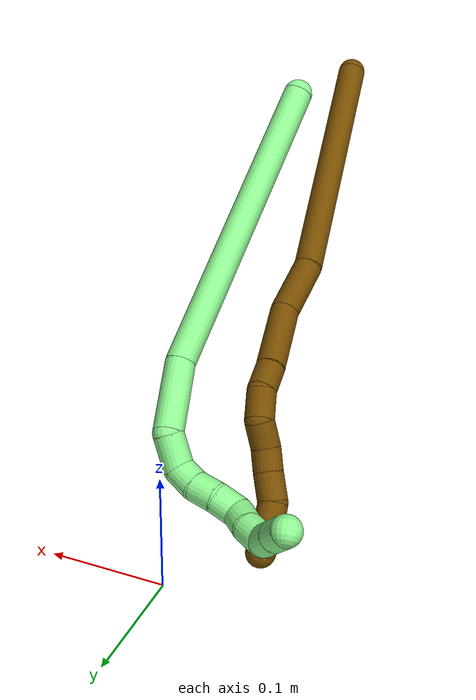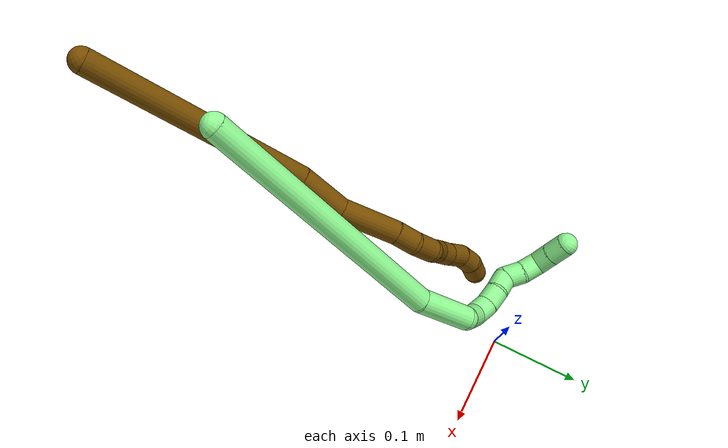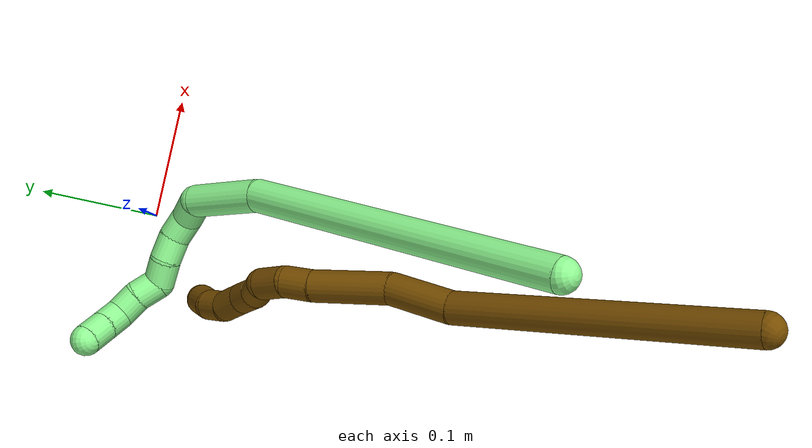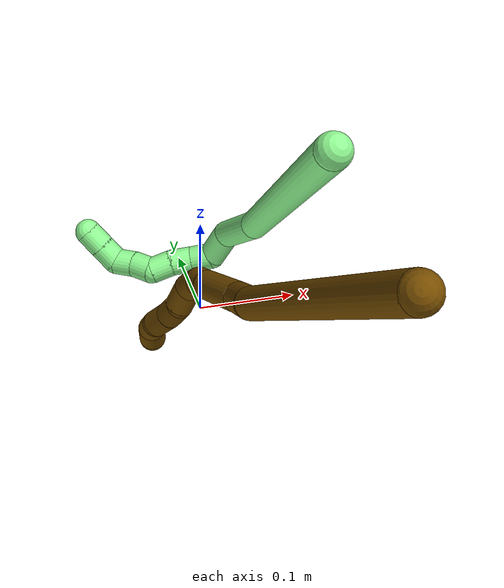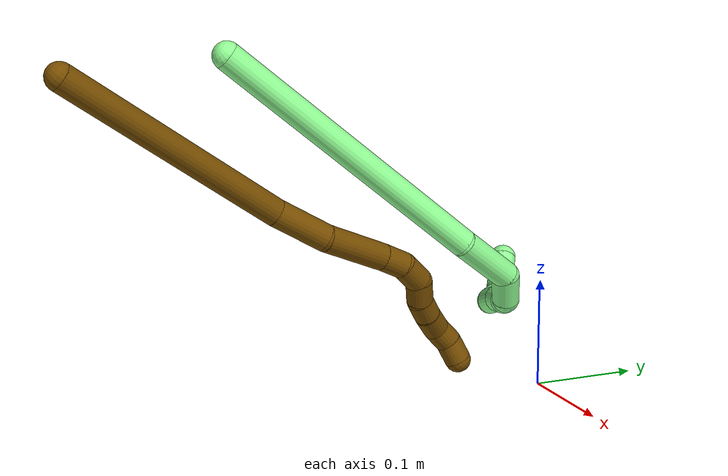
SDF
<sdf version="1.7">
 <world name="default">
  <model name="12">
   <static>0</static>
   <link name="12">
    <collision name="collision-cylinder-e_1_1_4">
     <pose>0.000473 0.048019 -0.101999 -2.70159 0.004196 -0.018764</pose>
     <geometry><cylinder><radius>0.0125</radius><length>0.225475</length></cylinder></geometry>
     <surface>
      <friction><ode><mu>1.16</mu><mu2>1.16</mu2><slip1>0</slip1><slip2>0</slip2></ode></friction>
      <contact><ode><kp>1e+06</kp><kd>1</kd><max_vel>0</max_vel><min_depth>0.001</min_depth></ode></contact>
     </surface>
    </collision>
    <visual name="visual-cylinder-e_1_1_4">
     <pose>0.000473 0.048019 -0.101999 -2.70159 0.004196 -0.018764</pose>
     <geometry><cylinder><radius>0.0125</radius><length>0.225475</length></cylinder></geometry>
     <material><ambient>0.466667 0.301961 0 1</ambient></material>
    </visual>
    <collision name="collision-cylinder-e_2_4_5">
     <pose>0.004848 0.10285 -0.228558 -2.87105 0.151893 -1.01958</pose>
     <geometry><cylinder><radius>0.0125</radius><length>0.05157</length></cylinder></geometry>
     <surface>
      <friction><ode><mu>1.16</mu><mu2>1.16</mu2><slip1>0</slip1><slip2>0</slip2></ode></friction>
      <contact><ode><kp>1e+06</kp><kd>1</kd><max_vel>0</max_vel><min_depth>0.001</min_depth></ode></contact>
     </surface>
    </collision>
    <visual name="visual-cylinder-e_2_4_5">
     <pose>0.004848 0.10285 -0.228558 -2.87105 0.151893 -1.01958</pose>
     <geometry><cylinder><radius>0.0125</radius><length>0.05157</length></cylinder></geometry>
     <material><ambient>0.466667 0.301961 0 1</ambient></material>
    </visual>
    <collision name="collision-cylinder-e_3_5_6">
     <pose>0.014424 0.126084 -0.279702 -2.5882 0.179658 -0.614279</pose>
     <geometry><cylinder><radius>0.0125</radius><length>0.063514</length></cylinder></geometry>
     <surface>
      <friction><ode><mu>1.16</mu><mu2>1.16</mu2><slip1>0</slip1><slip2>0</slip2></ode></friction>
      <contact><ode><kp>1e+06</kp><kd>1</kd><max_vel>0</max_vel><min_depth>0.001</min_depth></ode></contact>
     </surface>
    </collision>
    <visual name="visual-cylinder-e_3_5_6">
     <pose>0.014424 0.126084 -0.279702 -2.5882 0.179658 -0.614279</pose>
     <geometry><cylinder><radius>0.0125</radius><length>0.063514</length></cylinder></geometry>
     <material><ambient>0.466667 0.301961 0 1</ambient></material>
    </visual>
    <collision name="collision-cylinder-e_4_6_7">
     <pose>0.022184 0.147388 -0.31687 -2.70947 0.176977 -0.768267</pose>
     <geometry><cylinder><radius>0.0125</radius><length>0.023684</length></cylinder></geometry>
     <surface>
      <friction><ode><mu>1.16</mu><mu2>1.16</mu2><slip1>0</slip1><slip2>0</slip2></ode></friction>
      <contact><ode><kp>1e+06</kp><kd>1</kd><max_vel>0</max_vel><min_depth>0.001</min_depth></ode></contact>
     </surface>
    </collision>
    <visual name="visual-cylinder-e_4_6_7">
     <pose>0.022184 0.147388 -0.31687 -2.70947 0.176977 -0.768267</pose>
     <geometry><cylinder><radius>0.0125</radius><length>0.023684</length></cylinder></geometry>
     <material><ambient>0.466667 0.301961 0 1</ambient></material>
    </visual>
    <collision name="collision-cylinder-e_5_7_8">
     <pose>0.021974 0.158185 -0.338721 -2.65815 -0.178375 0.69592</pose>
     <geometry><cylinder><radius>0.0125</radius><length>0.025859</length></cylinder></geometry>
     <surface>
      <friction><ode><mu>1.16</mu><mu2>1.16</mu2><slip1>0</slip1><slip2>0</slip2></ode></friction>
      <contact><ode><kp>1e+06</kp><kd>1</kd><max_vel>0</max_vel><min_depth>0.001</min_depth></ode></contact>
     </surface>
    </collision>
    <visual name="visual-cylinder-e_5_7_8">
     <pose>0.021974 0.158185 -0.338721 -2.65815 -0.178375 0.69592</pose>
     <geometry><cylinder><radius>0.0125</radius><length>0.025859</length></cylinder></geometry>
     <material><ambient>0.466667 0.301961 0 1</ambient></material>
    </visual>
    <collision name="collision-cylinder-e_6_8_9">
     <pose>0.011686 0.167986 -0.357514 -2.66501 -0.756465 2.04423</pose>
     <geometry><cylinder><radius>0.0125</radius><length>0.023296</length></cylinder></geometry>
     <surface>
      <friction><ode><mu>1.16</mu><mu2>1.16</mu2><slip1>0</slip1><slip2>0</slip2></ode></friction>
      <contact><ode><kp>1e+06</kp><kd>1</kd><max_vel>0</max_vel><min_depth>0.001</min_depth></ode></contact>
     </surface>
    </collision>
    <visual name="visual-cylinder-e_6_8_9">
     <pose>0.011686 0.167986 -0.357514 -2.66501 -0.756465 2.04423</pose>
     <geometry><cylinder><radius>0.0125</radius><length>0.023296</length></cylinder></geometry>
     <material><ambient>0.466667 0.301961 0 1</ambient></material>
    </visual>
    <collision name="collision-cylinder-e_7_9_10">
     <pose>-0.000582 0.176632 -0.373126 -2.60942 -0.427397 1.34488</pose>
     <geometry><cylinder><radius>0.0125</radius><length>0.020618</length></cylinder></geometry>
     <surface>
      <friction><ode><mu>1.16</mu><mu2>1.16</mu2><slip1>0</slip1><slip2>0</slip2></ode></friction>
      <contact><ode><kp>1e+06</kp><kd>1</kd><max_vel>0</max_vel><min_depth>0.001</min_depth></ode></contact>
     </surface>
    </collision>
    <visual name="visual-cylinder-e_7_9_10">
     <pose>-0.000582 0.176632 -0.373126 -2.60942 -0.427397 1.34488</pose>
     <geometry><cylinder><radius>0.0125</radius><length>0.020618</length></cylinder></geometry>
     <material><ambient>0.466667 0.301961 0 1</ambient></material>
    </visual>
    <collision name="collision-cylinder-e_8_10_11">
     <pose>-0.009142 0.188283 -0.390442 -2.50039 -0.356227 0.993575</pose>
     <geometry><cylinder><radius>0.0125</radius><length>0.024582</length></cylinder></geometry>
     <surface>
      <friction><ode><mu>1.16</mu><mu2>1.16</mu2><slip1>0</slip1><slip2>0</slip2></ode></friction>
      <contact><ode><kp>1e+06</kp><kd>1</kd><max_vel>0</max_vel><min_depth>0.001</min_depth></ode></contact>
     </surface>
    </collision>
    <visual name="visual-cylinder-e_8_10_11">
     <pose>-0.009142 0.188283 -0.390442 -2.50039 -0.356227 0.993575</pose>
     <geometry><cylinder><radius>0.0125</radius><length>0.024582</length></cylinder></geometry>
     <material><ambient>0.466667 0.301961 0 1</ambient></material>
    </visual>
    <collision name="collision-cylinder-e_9_11_12">
     <pose>-0.015249 0.198446 -0.409076 -2.80669 -0.18094 0.985134</pose>
     <geometry><cylinder><radius>0.0125</radius><length>0.020242</length></cylinder></geometry>
     <surface>
      <friction><ode><mu>1.16</mu><mu2>1.16</mu2><slip1>0</slip1><slip2>0</slip2></ode></friction>
      <contact><ode><kp>1e+06</kp><kd>1</kd><max_vel>0</max_vel><min_depth>0.001</min_depth></ode></contact>
     </surface>
    </collision>
    <visual name="visual-cylinder-e_9_11_12">
     <pose>-0.015249 0.198446 -0.409076 -2.80669 -0.18094 0.985134</pose>
     <geometry><cylinder><radius>0.0125</radius><length>0.020242</length></cylinder></geometry>
     <material><ambient>0.466667 0.301961 0 1</ambient></material>
    </visual>
    <collision name="collision-cylinder-e_10_12_2">
     <pose>-0.021028 0.202008 -0.428286 -3.11198 -0.383406 2.98932</pose>
     <geometry><cylinder><radius>0.0125</radius><length>0.021159</length></cylinder></geometry>
     <surface>
      <friction><ode><mu>1.16</mu><mu2>1.16</mu2><slip1>0</slip1><slip2>0</slip2></ode></friction>
      <contact><ode><kp>1e+06</kp><kd>1</kd><max_vel>0</max_vel><min_depth>0.001</min_depth></ode></contact>
     </surface>
    </collision>
    <visual name="visual-cylinder-e_10_12_2">
     <pose>-0.021028 0.202008 -0.428286 -3.11198 -0.383406 2.98932</pose>
     <geometry><cylinder><radius>0.0125</radius><length>0.021159</length></cylinder></geometry>
     <material><ambient>0.466667 0.301961 0 1</ambient></material>
    </visual>
    <collision name="collision-sphere-2">
     <pose>-0.024986 0.202299 -0.438093 0 -0 0</pose>
     <geometry><sphere><radius>0.0125</radius></sphere></geometry>
     <surface>
      <friction><ode><mu>1.16</mu><mu2>1.16</mu2><slip1>0</slip1><slip2>0</slip2></ode></friction>
      <contact><ode><kp>1e+06</kp><kd>1</kd><max_vel>0</max_vel><min_depth>0.001</min_depth></ode></contact>
     </surface>
    </collision>
    <visual name="visual-sphere-2">
     <pose>-0.024986 0.202299 -0.438093 0 -0 0</pose>
     <geometry><sphere><radius>0.0125</radius></sphere></geometry>
     <material><ambient>0.466667 0.301961 0 1</ambient></material>
    </visual>
    <collision name="collision-sphere-12">
     <pose>-0.017071 0.201718 -0.418479 0 -0 0</pose>
     <geometry><sphere><radius>0.0125</radius></sphere></geometry>
     <surface>
      <friction><ode><mu>1.16</mu><mu2>1.16</mu2><slip1>0</slip1><slip2>0</slip2></ode></friction>
      <contact><ode><kp>1e+06</kp><kd>1</kd><max_vel>0</max_vel><min_depth>0.001</min_depth></ode></contact>
     </surface>
    </collision>
    <visual name="visual-sphere-12">
     <pose>-0.017071 0.201718 -0.418479 0 -0 0</pose>
     <geometry><sphere><radius>0.0125</radius></sphere></geometry>
     <material><ambient>0.466667 0.301961 0 1</ambient></material>
    </visual>
    <collision name="collision-sphere-11">
     <pose>-0.013428 0.195173 -0.399673 0 -0 0</pose>
     <geometry><sphere><radius>0.0125</radius></sphere></geometry>
     <surface>
      <friction><ode><mu>1.16</mu><mu2>1.16</mu2><slip1>0</slip1><slip2>0</slip2></ode></friction>
      <contact><ode><kp>1e+06</kp><kd>1</kd><max_vel>0</max_vel><min_depth>0.001</min_depth></ode></contact>
     </surface>
    </collision>
    <visual name="visual-sphere-11">
     <pose>-0.013428 0.195173 -0.399673 0 -0 0</pose>
     <geometry><sphere><radius>0.0125</radius></sphere></geometry>
     <material><ambient>0.466667 0.301961 0 1</ambient></material>
    </visual>
    <collision name="collision-sphere-10">
     <pose>-0.004855 0.181392 -0.38121 0 -0 0</pose>
     <geometry><sphere><radius>0.0125</radius></sphere></geometry>
     <surface>
      <friction><ode><mu>1.16</mu><mu2>1.16</mu2><slip1>0</slip1><slip2>0</slip2></ode></friction>
      <contact><ode><kp>1e+06</kp><kd>1</kd><max_vel>0</max_vel><min_depth>0.001</min_depth></ode></contact>
     </surface>
    </collision>
    <visual name="visual-sphere-10">
     <pose>-0.004855 0.181392 -0.38121 0 -0 0</pose>
     <geometry><sphere><radius>0.0125</radius></sphere></geometry>
     <material><ambient>0.466667 0.301961 0 1</ambient></material>
    </visual>
    <collision name="collision-sphere-9">
     <pose>0.003691 0.171872 -0.365042 0 -0 0</pose>
     <geometry><sphere><radius>0.0125</radius></sphere></geometry>
     <surface>
      <friction><ode><mu>1.16</mu><mu2>1.16</mu2><slip1>0</slip1><slip2>0</slip2></ode></friction>
      <contact><ode><kp>1e+06</kp><kd>1</kd><max_vel>0</max_vel><min_depth>0.001</min_depth></ode></contact>
     </surface>
    </collision>
    <visual name="visual-sphere-9">
     <pose>0.003691 0.171872 -0.365042 0 -0 0</pose>
     <geometry><sphere><radius>0.0125</radius></sphere></geometry>
     <material><ambient>0.466667 0.301961 0 1</ambient></material>
    </visual>
    <collision name="collision-sphere-4">
     <pose>0.000946 0.096039 -0.203997 0 -0 0</pose>
     <geometry><sphere><radius>0.0125</radius></sphere></geometry>
     <surface>
      <friction><ode><mu>1.16</mu><mu2>1.16</mu2><slip1>0</slip1><slip2>0</slip2></ode></friction>
      <contact><ode><kp>1e+06</kp><kd>1</kd><max_vel>0</max_vel><min_depth>0.001</min_depth></ode></contact>
     </surface>
    </collision>
    <visual name="visual-sphere-4">
     <pose>0.000946 0.096039 -0.203997 0 -0 0</pose>
     <geometry><sphere><radius>0.0125</radius></sphere></geometry>
     <material><ambient>0.466667 0.301961 0 1</ambient></material>
    </visual>
    <collision name="collision-sphere-1">
     <geometry><sphere><radius>0.0125</radius></sphere></geometry>
     <surface>
      <friction><ode><mu>1.16</mu><mu2>1.16</mu2><slip1>0</slip1><slip2>0</slip2></ode></friction>
      <contact><ode><kp>1e+06</kp><kd>1</kd><max_vel>0</max_vel><min_depth>0.001</min_depth></ode></contact>
     </surface>
    </collision>
    <visual name="visual-sphere-1">
     <geometry><sphere><radius>0.0125</radius></sphere></geometry>
     <material><ambient>0.466667 0.301961 0 1</ambient></material>
    </visual>
    <collision name="collision-sphere-8">
     <pose>0.01968 0.164099 -0.349987 0 -0 0</pose>
     <geometry><sphere><radius>0.0125</radius></sphere></geometry>
     <surface>
      <friction><ode><mu>1.16</mu><mu2>1.16</mu2><slip1>0</slip1><slip2>0</slip2></ode></friction>
      <contact><ode><kp>1e+06</kp><kd>1</kd><max_vel>0</max_vel><min_depth>0.001</min_depth></ode></contact>
     </surface>
    </collision>
    <visual name="visual-sphere-8">
     <pose>0.01968 0.164099 -0.349987 0 -0 0</pose>
     <geometry><sphere><radius>0.0125</radius></sphere></geometry>
     <material><ambient>0.466667 0.301961 0 1</ambient></material>
    </visual>
    <collision name="collision-sphere-5">
     <pose>0.008749 0.109662 -0.253119 0 -0 0</pose>
     <geometry><sphere><radius>0.0125</radius></sphere></geometry>
     <surface>
      <friction><ode><mu>1.16</mu><mu2>1.16</mu2><slip1>0</slip1><slip2>0</slip2></ode></friction>
      <contact><ode><kp>1e+06</kp><kd>1</kd><max_vel>0</max_vel><min_depth>0.001</min_depth></ode></contact>
     </surface>
    </collision>
    <visual name="visual-sphere-5">
     <pose>0.008749 0.109662 -0.253119 0 -0 0</pose>
     <geometry><sphere><radius>0.0125</radius></sphere></geometry>
     <material><ambient>0.466667 0.301961 0 1</ambient></material>
    </visual>
    <collision name="collision-sphere-6">
     <pose>0.020099 0.142506 -0.306284 0 -0 0</pose>
     <geometry><sphere><radius>0.0125</radius></sphere></geometry>
     <surface>
      <friction><ode><mu>1.16</mu><mu2>1.16</mu2><slip1>0</slip1><slip2>0</slip2></ode></friction>
      <contact><ode><kp>1e+06</kp><kd>1</kd><max_vel>0</max_vel><min_depth>0.001</min_depth></ode></contact>
     </surface>
    </collision>
    <visual name="visual-sphere-6">
     <pose>0.020099 0.142506 -0.306284 0 -0 0</pose>
     <geometry><sphere><radius>0.0125</radius></sphere></geometry>
     <material><ambient>0.466667 0.301961 0 1</ambient></material>
    </visual>
    <collision name="collision-sphere-7">
     <pose>0.024268 0.15227 -0.327455 0 -0 0</pose>
     <geometry><sphere><radius>0.0125</radius></sphere></geometry>
     <surface>
      <friction><ode><mu>1.16</mu><mu2>1.16</mu2><slip1>0</slip1><slip2>0</slip2></ode></friction>
      <contact><ode><kp>1e+06</kp><kd>1</kd><max_vel>0</max_vel><min_depth>0.001</min_depth></ode></contact>
     </surface>
    </collision>
    <visual name="visual-sphere-7">
     <pose>0.024268 0.15227 -0.327455 0 -0 0</pose>
     <geometry><sphere><radius>0.0125</radius></sphere></geometry>
     <material><ambient>0.466667 0.301961 0 1</ambient></material>
    </visual>
    <inertial>
     <pose>0.003297 0.104391 -0.223552 0 -0 0</pose>
     <mass>0.5</mass>
     <inertia>
      <ixx>0.000954</ixx>
      <ixy>0</ixy>
      <ixz>0</ixz>
      <iyy>-0.000916</iyy>
      <iyz>0</iyz>
      <izz>-0.000472</izz>
     </inertia>
    </inertial>
   </link>
   <pose>0.001837 -0.433169 0.305709 0.101428 -0.848572 1.04085</pose>
  </model>
  <model name="13">
   <static>0</static>
   <link name="13">
    <collision name="collision-cylinder-e_1_1_4">
     <pose>0.031302 0.00488 -0.130153 -3.10412 0.23586 -2.82787</pose>
     <geometry><cylinder><radius>0.0125</radius><length>0.267906</length></cylinder></geometry>
     <surface>
      <friction><ode><mu>1.16</mu><mu2>1.16</mu2><slip1>0</slip1><slip2>0</slip2></ode></friction>
      <contact><ode><kp>1e+06</kp><kd>1</kd><max_vel>0</max_vel><min_depth>0.001</min_depth></ode></contact>
     </surface>
    </collision>
    <visual name="visual-cylinder-e_1_1_4">
     <pose>0.031302 0.00488 -0.130153 -3.10412 0.23586 -2.82787</pose>
     <geometry><cylinder><radius>0.0125</radius><length>0.267906</length></cylinder></geometry>
     <material><ambient>0.564706 0.984314 0.572549 1</ambient></material>
    </visual>
    <collision name="collision-cylinder-e_2_4_5">
     <pose>0.062507 0.014709 -0.290767 -2.98052 -0.003138 0.03887</pose>
     <geometry><cylinder><radius>0.0125</radius><length>0.061723</length></cylinder></geometry>
     <surface>
      <friction><ode><mu>1.16</mu><mu2>1.16</mu2><slip1>0</slip1><slip2>0</slip2></ode></friction>
      <contact><ode><kp>1e+06</kp><kd>1</kd><max_vel>0</max_vel><min_depth>0.001</min_depth></ode></contact>
     </surface>
    </collision>
    <visual name="visual-cylinder-e_2_4_5">
     <pose>0.062507 0.014709 -0.290767 -2.98052 -0.003138 0.03887</pose>
     <geometry><cylinder><radius>0.0125</radius><length>0.061723</length></cylinder></geometry>
     <material><ambient>0.564706 0.984314 0.572549 1</ambient></material>
    </visual>
    <collision name="collision-cylinder-e_3_5_6">
     <pose>0.056172 0.014689 -0.333709 2.76264 -0.434786 -1.71163</pose>
     <geometry><cylinder><radius>0.0125</radius><length>0.029621</length></cylinder></geometry>
     <surface>
      <friction><ode><mu>1.16</mu><mu2>1.16</mu2><slip1>0</slip1><slip2>0</slip2></ode></friction>
      <contact><ode><kp>1e+06</kp><kd>1</kd><max_vel>0</max_vel><min_depth>0.001</min_depth></ode></contact>
     </surface>
    </collision>
    <visual name="visual-cylinder-e_3_5_6">
     <pose>0.056172 0.014689 -0.333709 2.76264 -0.434786 -1.71163</pose>
     <geometry><cylinder><radius>0.0125</radius><length>0.029621</length></cylinder></geometry>
     <material><ambient>0.564706 0.984314 0.572549 1</ambient></material>
    </visual>
    <collision name="collision-cylinder-e_4_6_7">
     <pose>0.042511 0.012734 -0.352246 -2.67985 -0.831585 2.16316</pose>
     <geometry><cylinder><radius>0.0125</radius><length>0.020089</length></cylinder></geometry>
     <surface>
      <friction><ode><mu>1.16</mu><mu2>1.16</mu2><slip1>0</slip1><slip2>0</slip2></ode></friction>
      <contact><ode><kp>1e+06</kp><kd>1</kd><max_vel>0</max_vel><min_depth>0.001</min_depth></ode></contact>
     </surface>
    </collision>
    <visual name="visual-cylinder-e_4_6_7">
     <pose>0.042511 0.012734 -0.352246 -2.67985 -0.831585 2.16316</pose>
     <geometry><cylinder><radius>0.0125</radius><length>0.020089</length></cylinder></geometry>
     <material><ambient>0.564706 0.984314 0.572549 1</ambient></material>
    </visual>
    <collision name="collision-cylinder-e_5_7_8">
     <pose>0.026314 0.018783 -0.36211 -2.46854 -1.06434 2.06943</pose>
     <geometry><cylinder><radius>0.0125</radius><length>0.020067</length></cylinder></geometry>
     <surface>
      <friction><ode><mu>1.16</mu><mu2>1.16</mu2><slip1>0</slip1><slip2>0</slip2></ode></friction>
      <contact><ode><kp>1e+06</kp><kd>1</kd><max_vel>0</max_vel><min_depth>0.001</min_depth></ode></contact>
     </surface>
    </collision>
    <visual name="visual-cylinder-e_5_7_8">
     <pose>0.026314 0.018783 -0.36211 -2.46854 -1.06434 2.06943</pose>
     <geometry><cylinder><radius>0.0125</radius><length>0.020067</length></cylinder></geometry>
     <material><ambient>0.564706 0.984314 0.572549 1</ambient></material>
    </visual>
    <collision name="collision-cylinder-e_6_8_9">
     <pose>0.008444 0.022833 -0.370528 -2.92471 -1.09189 2.78697</pose>
     <geometry><cylinder><radius>0.0125</radius><length>0.020498</length></cylinder></geometry>
     <surface>
      <friction><ode><mu>1.16</mu><mu2>1.16</mu2><slip1>0</slip1><slip2>0</slip2></ode></friction>
      <contact><ode><kp>1e+06</kp><kd>1</kd><max_vel>0</max_vel><min_depth>0.001</min_depth></ode></contact>
     </surface>
    </collision>
    <visual name="visual-cylinder-e_6_8_9">
     <pose>0.008444 0.022833 -0.370528 -2.92471 -1.09189 2.78697</pose>
     <geometry><cylinder><radius>0.0125</radius><length>0.020498</length></cylinder></geometry>
     <material><ambient>0.564706 0.984314 0.572549 1</ambient></material>
    </visual>
    <collision name="collision-cylinder-e_7_9_10">
     <pose>-0.004901 0.030783 -0.381011 -2.27335 -0.437505 0.894243</pose>
     <geometry><cylinder><radius>0.0125</radius><length>0.020059</length></cylinder></geometry>
     <surface>
      <friction><ode><mu>1.16</mu><mu2>1.16</mu2><slip1>0</slip1><slip2>0</slip2></ode></friction>
      <contact><ode><kp>1e+06</kp><kd>1</kd><max_vel>0</max_vel><min_depth>0.001</min_depth></ode></contact>
     </surface>
    </collision>
    <visual name="visual-cylinder-e_7_9_10">
     <pose>-0.004901 0.030783 -0.381011 -2.27335 -0.437505 0.894243</pose>
     <geometry><cylinder><radius>0.0125</radius><length>0.020059</length></cylinder></geometry>
     <material><ambient>0.564706 0.984314 0.572549 1</ambient></material>
    </visual>
    <collision name="collision-cylinder-e_8_10_11">
     <pose>-0.015377 0.043625 -0.39204 -2.28849 -0.670911 1.30876</pose>
     <geometry><cylinder><radius>0.0125</radius><length>0.02003</length></cylinder></geometry>
     <surface>
      <friction><ode><mu>1.16</mu><mu2>1.16</mu2><slip1>0</slip1><slip2>0</slip2></ode></friction>
      <contact><ode><kp>1e+06</kp><kd>1</kd><max_vel>0</max_vel><min_depth>0.001</min_depth></ode></contact>
     </surface>
    </collision>
    <visual name="visual-cylinder-e_8_10_11">
     <pose>-0.015377 0.043625 -0.39204 -2.28849 -0.670911 1.30876</pose>
     <geometry><cylinder><radius>0.0125</radius><length>0.02003</length></cylinder></geometry>
     <material><ambient>0.564706 0.984314 0.572549 1</ambient></material>
    </visual>
    <collision name="collision-cylinder-e_9_11_12">
     <pose>-0.025145 0.058819 -0.396066 -1.44941 -0.362039 0.321315</pose>
     <geometry><cylinder><radius>0.0125</radius><length>0.020003</length></cylinder></geometry>
     <surface>
      <friction><ode><mu>1.16</mu><mu2>1.16</mu2><slip1>0</slip1><slip2>0</slip2></ode></friction>
      <contact><ode><kp>1e+06</kp><kd>1</kd><max_vel>0</max_vel><min_depth>0.001</min_depth></ode></contact>
     </surface>
    </collision>
    <visual name="visual-cylinder-e_9_11_12">
     <pose>-0.025145 0.058819 -0.396066 -1.44941 -0.362039 0.321315</pose>
     <geometry><cylinder><radius>0.0125</radius><length>0.020003</length></cylinder></geometry>
     <material><ambient>0.564706 0.984314 0.572549 1</ambient></material>
    </visual>
    <collision name="collision-cylinder-e_10_12_2">
     <pose>-0.032211 0.077402 -0.393851 -1.45496 -0.359993 0.32125</pose>
     <geometry><cylinder><radius>0.0125</radius><length>0.020006</length></cylinder></geometry>
     <surface>
      <friction><ode><mu>1.16</mu><mu2>1.16</mu2><slip1>0</slip1><slip2>0</slip2></ode></friction>
      <contact><ode><kp>1e+06</kp><kd>1</kd><max_vel>0</max_vel><min_depth>0.001</min_depth></ode></contact>
     </surface>
    </collision>
    <visual name="visual-cylinder-e_10_12_2">
     <pose>-0.032211 0.077402 -0.393851 -1.45496 -0.359993 0.32125</pose>
     <geometry><cylinder><radius>0.0125</radius><length>0.020006</length></cylinder></geometry>
     <material><ambient>0.564706 0.984314 0.572549 1</ambient></material>
    </visual>
    <collision name="collision-sphere-2">
     <pose>-0.035735 0.086701 -0.39277 0 -0 0</pose>
     <geometry><sphere><radius>0.0125</radius></sphere></geometry>
     <surface>
      <friction><ode><mu>1.16</mu><mu2>1.16</mu2><slip1>0</slip1><slip2>0</slip2></ode></friction>
      <contact><ode><kp>1e+06</kp><kd>1</kd><max_vel>0</max_vel><min_depth>0.001</min_depth></ode></contact>
     </surface>
    </collision>
    <visual name="visual-sphere-2">
     <pose>-0.035735 0.086701 -0.39277 0 -0 0</pose>
     <geometry><sphere><radius>0.0125</radius></sphere></geometry>
     <material><ambient>0.564706 0.984314 0.572549 1</ambient></material>
    </visual>
    <collision name="collision-sphere-12">
     <pose>-0.028687 0.068103 -0.394933 0 -0 0</pose>
     <geometry><sphere><radius>0.0125</radius></sphere></geometry>
     <surface>
      <friction><ode><mu>1.16</mu><mu2>1.16</mu2><slip1>0</slip1><slip2>0</slip2></ode></friction>
      <contact><ode><kp>1e+06</kp><kd>1</kd><max_vel>0</max_vel><min_depth>0.001</min_depth></ode></contact>
     </surface>
    </collision>
    <visual name="visual-sphere-12">
     <pose>-0.028687 0.068103 -0.394933 0 -0 0</pose>
     <geometry><sphere><radius>0.0125</radius></sphere></geometry>
     <material><ambient>0.564706 0.984314 0.572549 1</ambient></material>
    </visual>
    <collision name="collision-sphere-11">
     <pose>-0.021603 0.049535 -0.397198 0 -0 0</pose>
     <geometry><sphere><radius>0.0125</radius></sphere></geometry>
     <surface>
      <friction><ode><mu>1.16</mu><mu2>1.16</mu2><slip1>0</slip1><slip2>0</slip2></ode></friction>
      <contact><ode><kp>1e+06</kp><kd>1</kd><max_vel>0</max_vel><min_depth>0.001</min_depth></ode></contact>
     </surface>
    </collision>
    <visual name="visual-sphere-11">
     <pose>-0.021603 0.049535 -0.397198 0 -0 0</pose>
     <geometry><sphere><radius>0.0125</radius></sphere></geometry>
     <material><ambient>0.564706 0.984314 0.572549 1</ambient></material>
    </visual>
    <collision name="collision-sphere-10">
     <pose>-0.009151 0.037716 -0.386881 0 -0 0</pose>
     <geometry><sphere><radius>0.0125</radius></sphere></geometry>
     <surface>
      <friction><ode><mu>1.16</mu><mu2>1.16</mu2><slip1>0</slip1><slip2>0</slip2></ode></friction>
      <contact><ode><kp>1e+06</kp><kd>1</kd><max_vel>0</max_vel><min_depth>0.001</min_depth></ode></contact>
     </surface>
    </collision>
    <visual name="visual-sphere-10">
     <pose>-0.009151 0.037716 -0.386881 0 -0 0</pose>
     <geometry><sphere><radius>0.0125</radius></sphere></geometry>
     <material><ambient>0.564706 0.984314 0.572549 1</ambient></material>
    </visual>
    <collision name="collision-sphere-9">
     <pose>-0.000652 0.02385 -0.375141 0 -0 0</pose>
     <geometry><sphere><radius>0.0125</radius></sphere></geometry>
     <surface>
      <friction><ode><mu>1.16</mu><mu2>1.16</mu2><slip1>0</slip1><slip2>0</slip2></ode></friction>
      <contact><ode><kp>1e+06</kp><kd>1</kd><max_vel>0</max_vel><min_depth>0.001</min_depth></ode></contact>
     </surface>
    </collision>
    <visual name="visual-sphere-9">
     <pose>-0.000652 0.02385 -0.375141 0 -0 0</pose>
     <geometry><sphere><radius>0.0125</radius></sphere></geometry>
     <material><ambient>0.564706 0.984314 0.572549 1</ambient></material>
    </visual>
    <collision name="collision-sphere-4">
     <pose>0.062604 0.009759 -0.260306 0 -0 0</pose>
     <geometry><sphere><radius>0.0125</radius></sphere></geometry>
     <surface>
      <friction><ode><mu>1.16</mu><mu2>1.16</mu2><slip1>0</slip1><slip2>0</slip2></ode></friction>
      <contact><ode><kp>1e+06</kp><kd>1</kd><max_vel>0</max_vel><min_depth>0.001</min_depth></ode></contact>
     </surface>
    </collision>
    <visual name="visual-sphere-4">
     <pose>0.062604 0.009759 -0.260306 0 -0 0</pose>
     <geometry><sphere><radius>0.0125</radius></sphere></geometry>
     <material><ambient>0.564706 0.984314 0.572549 1</ambient></material>
    </visual>
    <collision name="collision-sphere-1">
     <geometry><sphere><radius>0.0125</radius></sphere></geometry>
     <surface>
      <friction><ode><mu>1.16</mu><mu2>1.16</mu2><slip1>0</slip1><slip2>0</slip2></ode></friction>
      <contact><ode><kp>1e+06</kp><kd>1</kd><max_vel>0</max_vel><min_depth>0.001</min_depth></ode></contact>
     </surface>
    </collision>
    <visual name="visual-sphere-1">
     <geometry><sphere><radius>0.0125</radius></sphere></geometry>
     <material><ambient>0.564706 0.984314 0.572549 1</ambient></material>
    </visual>
    <collision name="collision-sphere-8">
     <pose>0.01754 0.021817 -0.365916 0 -0 0</pose>
     <geometry><sphere><radius>0.0125</radius></sphere></geometry>
     <surface>
      <friction><ode><mu>1.16</mu><mu2>1.16</mu2><slip1>0</slip1><slip2>0</slip2></ode></friction>
      <contact><ode><kp>1e+06</kp><kd>1</kd><max_vel>0</max_vel><min_depth>0.001</min_depth></ode></contact>
     </surface>
    </collision>
    <visual name="visual-sphere-8">
     <pose>0.01754 0.021817 -0.365916 0 -0 0</pose>
     <geometry><sphere><radius>0.0125</radius></sphere></geometry>
     <material><ambient>0.564706 0.984314 0.572549 1</ambient></material>
    </visual>
    <collision name="collision-sphere-5">
     <pose>0.06241 0.019658 -0.321229 0 -0 0</pose>
     <geometry><sphere><radius>0.0125</radius></sphere></geometry>
     <surface>
      <friction><ode><mu>1.16</mu><mu2>1.16</mu2><slip1>0</slip1><slip2>0</slip2></ode></friction>
      <contact><ode><kp>1e+06</kp><kd>1</kd><max_vel>0</max_vel><min_depth>0.001</min_depth></ode></contact>
     </surface>
    </collision>
    <visual name="visual-sphere-5">
     <pose>0.06241 0.019658 -0.321229 0 -0 0</pose>
     <geometry><sphere><radius>0.0125</radius></sphere></geometry>
     <material><ambient>0.564706 0.984314 0.572549 1</ambient></material>
    </visual>
    <collision name="collision-sphere-6">
     <pose>0.049934 0.009719 -0.346188 0 -0 0</pose>
     <geometry><sphere><radius>0.0125</radius></sphere></geometry>
     <surface>
      <friction><ode><mu>1.16</mu><mu2>1.16</mu2><slip1>0</slip1><slip2>0</slip2></ode></friction>
      <contact><ode><kp>1e+06</kp><kd>1</kd><max_vel>0</max_vel><min_depth>0.001</min_depth></ode></contact>
     </surface>
    </collision>
    <visual name="visual-sphere-6">
     <pose>0.049934 0.009719 -0.346188 0 -0 0</pose>
     <geometry><sphere><radius>0.0125</radius></sphere></geometry>
     <material><ambient>0.564706 0.984314 0.572549 1</ambient></material>
    </visual>
    <collision name="collision-sphere-7">
     <pose>0.035088 0.015749 -0.358305 0 -0 0</pose>
     <geometry><sphere><radius>0.0125</radius></sphere></geometry>
     <surface>
      <friction><ode><mu>1.16</mu><mu2>1.16</mu2><slip1>0</slip1><slip2>0</slip2></ode></friction>
      <contact><ode><kp>1e+06</kp><kd>1</kd><max_vel>0</max_vel><min_depth>0.001</min_depth></ode></contact>
     </surface>
    </collision>
    <visual name="visual-sphere-7">
     <pose>0.035088 0.015749 -0.358305 0 -0 0</pose>
     <geometry><sphere><radius>0.0125</radius></sphere></geometry>
     <material><ambient>0.564706 0.984314 0.572549 1</ambient></material>
    </visual>
    <inertial>
     <pose>0.027819 0.015935 -0.23187 0 -0 0</pose>
     <mass>0.5</mass>
     <inertia>
      <ixx>-0.001952</ixx>
      <ixy>0</ixy>
      <ixz>0</ixz>
      <iyy>0.001047</iyy>
      <iyz>0</iyz>
      <izz>-0.000467</izz>
     </inertia>
    </inertial>
   </link>
   <pose>0.007723 -0.29921 0.318207 0.778832 -0.120433 0.32468</pose>
  </model>
 </world>
</sdf>
